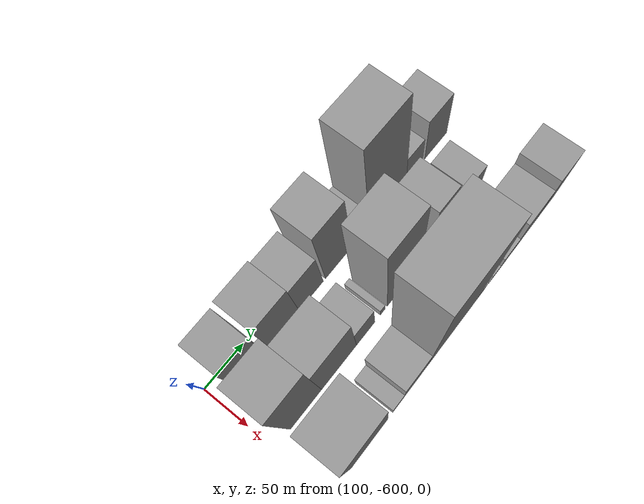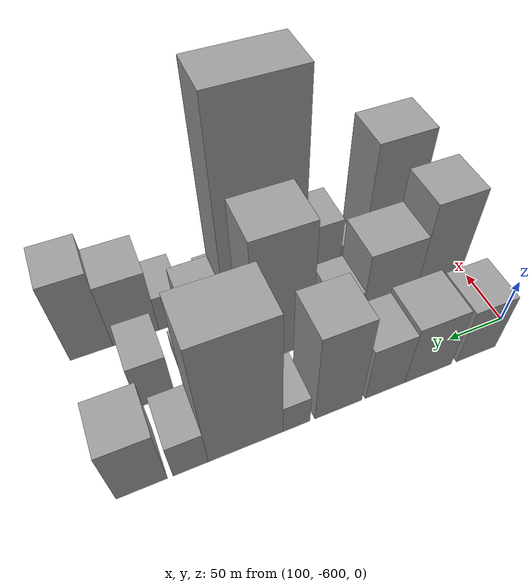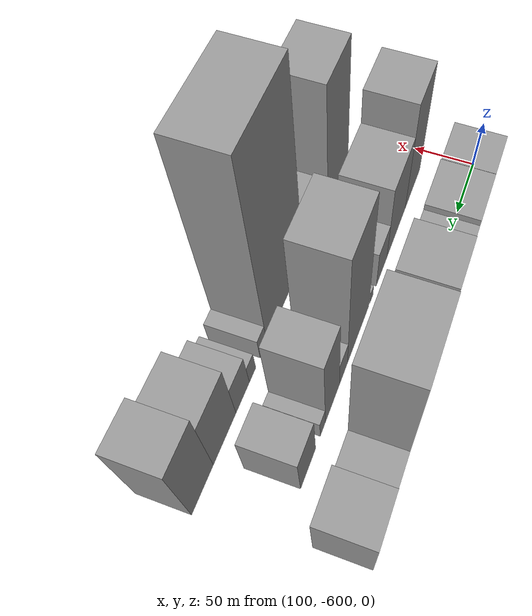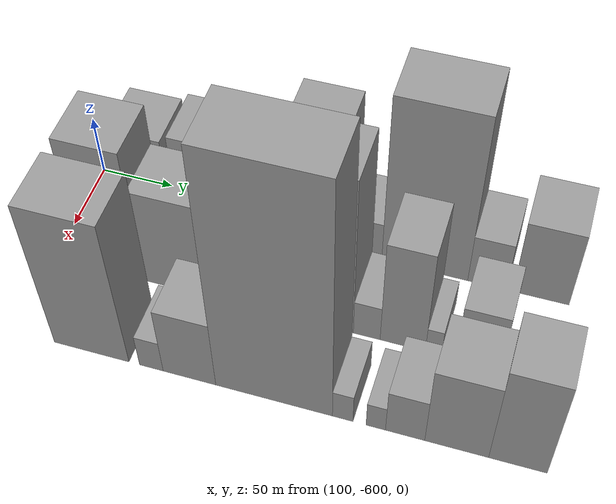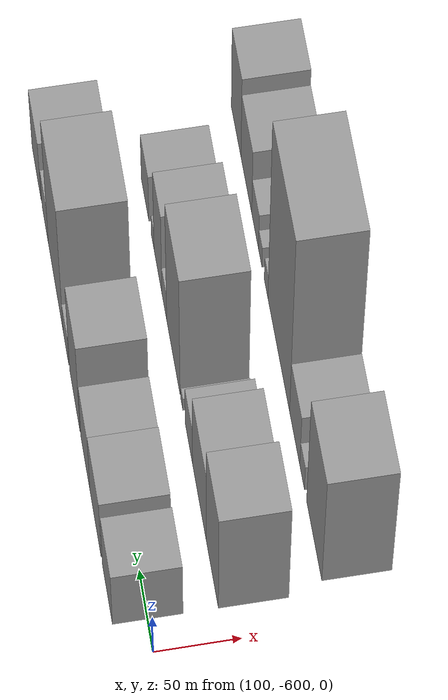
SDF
<sdf version="1.6">
 <world name="default">
  <model name="building_1">
   <static>1</static>
   <pose>100.0000 -561.8309 0 0.000000 0.000000 0.000000</pose>
   <link name="link">
    <pose>0 0 33.00 0 0 0</pose>
    <collision name="collision"><geometry><box><size>40.0000 36.3382 66.0000</size></box></geometry></collision>
    <visual name="visual">
     <cast_shadows>0</cast_shadows>
     <geometry><box><size>40.0000 36.3382 66.0000</size></box></geometry>
     <material>
      <script>
       <uri>model://grey_wall/materials/scripts</uri>
       <uri>model://grey_wall/materials/textures</uri>
       <name>vrc/grey_wall</name>
      </script>
     </material>
    </visual>
   </link>
  </model>
  <model name="building_2">
   <static>1</static>
   <pose>100.0000 -517.9481 0 0.000000 0.000000 0.000000</pose>
   <link name="link">
    <pose>0 0 36.00 0 0 0</pose>
    <collision name="collision"><geometry><box><size>40.0000 41.4275 72.0000</size></box></geometry></collision>
    <visual name="visual">
     <cast_shadows>0</cast_shadows>
     <geometry><box><size>40.0000 41.4275 72.0000</size></box></geometry>
     <material>
      <script>
       <uri>model://grey_wall/materials/scripts</uri>
       <uri>model://grey_wall/materials/textures</uri>
       <name>vrc/grey_wall</name>
      </script>
     </material>
    </visual>
   </link>
  </model>
  <model name="building_3">
   <static>1</static>
   <pose>100.0000 -480.1152 0 0.000000 0.000000 0.000000</pose>
   <link name="link">
    <pose>0 0 33.00 0 0 0</pose>
    <collision name="collision"><geometry><box><size>40.0000 34.2383 66.0000</size></box></geometry></collision>
    <visual name="visual">
     <cast_shadows>0</cast_shadows>
     <geometry><box><size>40.0000 34.2383 66.0000</size></box></geometry>
     <material>
      <script>
       <uri>model://grey_wall/materials/scripts</uri>
       <uri>model://grey_wall/materials/textures</uri>
       <name>vrc/grey_wall</name>
      </script>
     </material>
    </visual>
   </link>
  </model>
  <model name="building_4">
   <static>1</static>
   <pose>100.0000 -440.6088 0 0.000000 0.000000 0.000000</pose>
   <link name="link">
    <pose>0 0 54.00 0 0 0</pose>
    <collision name="collision"><geometry><box><size>40.0000 38.7744 108.0000</size></box></geometry></collision>
    <visual name="visual">
     <cast_shadows>0</cast_shadows>
     <geometry><box><size>40.0000 38.7744 108.0000</size></box></geometry>
     <material>
      <script>
       <uri>model://grey_wall/materials/scripts</uri>
       <uri>model://grey_wall/materials/textures</uri>
       <name>vrc/grey_wall</name>
      </script>
     </material>
    </visual>
   </link>
  </model>
  <model name="building_5">
   <static>1</static>
   <pose>100.0000 -406.5077 0 0.000000 0.000000 0.000000</pose>
   <link name="link">
    <pose>0 0 18.00 0 0 0</pose>
    <collision name="collision"><geometry><box><size>40.0000 21.4278 36.0000</size></box></geometry></collision>
    <visual name="visual">
     <cast_shadows>0</cast_shadows>
     <geometry><box><size>40.0000 21.4278 36.0000</size></box></geometry>
     <material>
      <script>
       <uri>model://grey_wall/materials/scripts</uri>
       <uri>model://grey_wall/materials/textures</uri>
       <name>vrc/grey_wall</name>
      </script>
     </material>
    </visual>
   </link>
  </model>
  <model name="building_6">
   <static>1</static>
   <pose>100.0000 -367.1840 0 0.000000 0.000000 0.000000</pose>
   <link name="link">
    <pose>0 0 75.00 0 0 0</pose>
    <collision name="collision"><geometry><box><size>40.0000 57.2195 150.0000</size></box></geometry></collision>
    <visual name="visual">
     <cast_shadows>0</cast_shadows>
     <geometry><box><size>40.0000 57.2195 150.0000</size></box></geometry>
     <material>
      <script>
       <uri>model://grey_wall/materials/scripts</uri>
       <uri>model://grey_wall/materials/textures</uri>
       <name>vrc/grey_wall</name>
      </script>
     </material>
    </visual>
   </link>
  </model>
  <model name="building_7">
   <static>1</static>
   <pose>100.0000 -325.8104 0 0.000000 0.000000 0.000000</pose>
   <link name="link">
    <pose>0 0 22.50 0 0 0</pose>
    <collision name="collision"><geometry><box><size>40.0000 25.5277 45.0000</size></box></geometry></collision>
    <visual name="visual">
     <cast_shadows>0</cast_shadows>
     <geometry><box><size>40.0000 25.5277 45.0000</size></box></geometry>
     <material>
      <script>
       <uri>model://grey_wall/materials/scripts</uri>
       <uri>model://grey_wall/materials/textures</uri>
       <name>vrc/grey_wall</name>
      </script>
     </material>
    </visual>
   </link>
  </model>
  <model name="building_8">
   <static>1</static>
   <pose>100.0000 -291.0160 0 0.000000 0.000000 0.000000</pose>
   <link name="link">
    <pose>0 0 34.50 0 0 0</pose>
    <collision name="collision"><geometry><box><size>40.0000 36.0610 69.0000</size></box></geometry></collision>
    <visual name="visual">
     <cast_shadows>0</cast_shadows>
     <geometry><box><size>40.0000 36.0610 69.0000</size></box></geometry>
     <material>
      <script>
       <uri>model://grey_wall/materials/scripts</uri>
       <uri>model://grey_wall/materials/textures</uri>
       <name>vrc/grey_wall</name>
      </script>
     </material>
    </visual>
   </link>
  </model>
  <model name="building_38">
   <static>1</static>
   <pose>160.0000 -559.2099 0 0.000000 0.000000 0.000000</pose>
   <link name="link">
    <pose>0 0 60.00 0 0 0</pose>
    <collision name="collision"><geometry><box><size>40.0000 41.5803 120.0000</size></box></geometry></collision>
    <visual name="visual">
     <cast_shadows>0</cast_shadows>
     <geometry><box><size>40.0000 41.5803 120.0000</size></box></geometry>
     <material>
      <script>
       <uri>model://grey_wall/materials/scripts</uri>
       <uri>model://grey_wall/materials/textures</uri>
       <name>vrc/grey_wall</name>
      </script>
     </material>
    </visual>
   </link>
  </model>
  <model name="building_39">
   <static>1</static>
   <pose>160.0000 -514.3681 0 0.000000 0.000000 0.000000</pose>
   <link name="link">
    <pose>0 0 43.50 0 0 0</pose>
    <collision name="collision"><geometry><box><size>40.0000 48.1032 87.0000</size></box></geometry></collision>
    <visual name="visual">
     <cast_shadows>0</cast_shadows>
     <geometry><box><size>40.0000 48.1032 87.0000</size></box></geometry>
     <material>
      <script>
       <uri>model://grey_wall/materials/scripts</uri>
       <uri>model://grey_wall/materials/textures</uri>
       <name>vrc/grey_wall</name>
      </script>
     </material>
    </visual>
   </link>
  </model>
  <model name="building_40">
   <static>1</static>
   <pose>160.0000 -477.2326 0 0.000000 0.000000 0.000000</pose>
   <link name="link">
    <pose>0 0 22.50 0 0 0</pose>
    <collision name="collision"><geometry><box><size>40.0000 26.1678 45.0000</size></box></geometry></collision>
    <visual name="visual">
     <cast_shadows>0</cast_shadows>
     <geometry><box><size>40.0000 26.1678 45.0000</size></box></geometry>
     <material>
      <script>
       <uri>model://grey_wall/materials/scripts</uri>
       <uri>model://grey_wall/materials/textures</uri>
       <name>vrc/grey_wall</name>
      </script>
     </material>
    </visual>
   </link>
  </model>
  <model name="building_41">
   <static>1</static>
   <pose>160.0000 -452.6797 0 0.000000 0.000000 0.000000</pose>
   <link name="link">
    <pose>0 0 7.50 0 0 0</pose>
    <collision name="collision"><geometry><box><size>40.0000 6.9381 15.0000</size></box></geometry></collision>
    <visual name="visual">
     <cast_shadows>0</cast_shadows>
     <geometry><box><size>40.0000 6.9381 15.0000</size></box></geometry>
     <material>
      <script>
       <uri>model://grey_wall/materials/scripts</uri>
       <uri>model://grey_wall/materials/textures</uri>
       <name>vrc/grey_wall</name>
      </script>
     </material>
    </visual>
   </link>
  </model>
  <model name="building_42">
   <static>1</static>
   <pose>160.0000 -422.0795 0 0.000000 0.000000 0.000000</pose>
   <link name="link">
    <pose>0 0 72.00 0 0 0</pose>
    <collision name="collision"><geometry><box><size>40.0000 48.2623 144.0000</size></box></geometry></collision>
    <visual name="visual">
     <cast_shadows>0</cast_shadows>
     <geometry><box><size>40.0000 48.2623 144.0000</size></box></geometry>
     <material>
      <script>
       <uri>model://grey_wall/materials/scripts</uri>
       <uri>model://grey_wall/materials/textures</uri>
       <name>vrc/grey_wall</name>
      </script>
     </material>
    </visual>
   </link>
  </model>
  <model name="building_43">
   <static>1</static>
   <pose>160.0000 -389.3384 0 0.000000 0.000000 0.000000</pose>
   <link name="link">
    <pose>0 0 16.50 0 0 0</pose>
    <collision name="collision"><geometry><box><size>40.0000 17.2200 33.0000</size></box></geometry></collision>
    <visual name="visual">
     <cast_shadows>0</cast_shadows>
     <geometry><box><size>40.0000 17.2200 33.0000</size></box></geometry>
     <material>
      <script>
       <uri>model://grey_wall/materials/scripts</uri>
       <uri>model://grey_wall/materials/textures</uri>
       <name>vrc/grey_wall</name>
      </script>
     </material>
    </visual>
   </link>
  </model>
  <model name="building_44">
   <static>1</static>
   <pose>160.0000 -366.3206 0 0.000000 0.000000 0.000000</pose>
   <link name="link">
    <pose>0 0 48.00 0 0 0</pose>
    <collision name="collision"><geometry><box><size>40.0000 28.8156 96.0000</size></box></geometry></collision>
    <visual name="visual">
     <cast_shadows>0</cast_shadows>
     <geometry><box><size>40.0000 28.8156 96.0000</size></box></geometry>
     <material>
      <script>
       <uri>model://grey_wall/materials/scripts</uri>
       <uri>model://grey_wall/materials/textures</uri>
       <name>vrc/grey_wall</name>
      </script>
     </material>
    </visual>
   </link>
  </model>
  <model name="building_45">
   <static>1</static>
   <pose>160.0000 -346.7898 0 0.000000 0.000000 0.000000</pose>
   <link name="link">
    <pose>0 0 12.00 0 0 0</pose>
    <collision name="collision"><geometry><box><size>40.0000 10.2461 24.0000</size></box></geometry></collision>
    <visual name="visual">
     <cast_shadows>0</cast_shadows>
     <geometry><box><size>40.0000 10.2461 24.0000</size></box></geometry>
     <material>
      <script>
       <uri>model://grey_wall/materials/scripts</uri>
       <uri>model://grey_wall/materials/textures</uri>
       <name>vrc/grey_wall</name>
      </script>
     </material>
    </visual>
   </link>
  </model>
  <model name="building_46">
   <static>1</static>
   <pose>160.0000 -318.5452 0 0.000000 0.000000 0.000000</pose>
   <link name="link">
    <pose>0 0 27.00 0 0 0</pose>
    <collision name="collision"><geometry><box><size>40.0000 28.2431 54.0000</size></box></geometry></collision>
    <visual name="visual">
     <cast_shadows>0</cast_shadows>
     <geometry><box><size>40.0000 28.2431 54.0000</size></box></geometry>
     <material>
      <script>
       <uri>model://grey_wall/materials/scripts</uri>
       <uri>model://grey_wall/materials/textures</uri>
       <name>vrc/grey_wall</name>
      </script>
     </material>
    </visual>
   </link>
  </model>
  <model name="building_73">
   <static>1</static>
   <pose>220.0000 -548.1871 0 0.000000 0.000000 0.000000</pose>
   <link name="link">
    <pose>0 0 66.00 0 0 0</pose>
    <collision name="collision"><geometry><box><size>40.0000 49.6259 132.0000</size></box></geometry></collision>
    <visual name="visual">
     <cast_shadows>0</cast_shadows>
     <geometry><box><size>40.0000 49.6259 132.0000</size></box></geometry>
     <material>
      <script>
       <uri>model://grey_wall/materials/scripts</uri>
       <uri>model://grey_wall/materials/textures</uri>
       <name>vrc/grey_wall</name>
      </script>
     </material>
    </visual>
   </link>
  </model>
  <model name="building_74">
   <static>1</static>
   <pose>220.0000 -508.6748 0 0.000000 0.000000 0.000000</pose>
   <link name="link">
    <pose>0 0 15.00 0 0 0</pose>
    <collision name="collision"><geometry><box><size>40.0000 15.3985 30.0000</size></box></geometry></collision>
    <visual name="visual">
     <cast_shadows>0</cast_shadows>
     <geometry><box><size>40.0000 15.3985 30.0000</size></box></geometry>
     <material>
      <script>
       <uri>model://grey_wall/materials/scripts</uri>
       <uri>model://grey_wall/materials/textures</uri>
       <name>vrc/grey_wall</name>
      </script>
     </material>
    </visual>
   </link>
  </model>
  <model name="building_75">
   <static>1</static>
   <pose>220.0000 -483.9895 0 0.000000 0.000000 0.000000</pose>
   <link name="link">
    <pose>0 0 31.50 0 0 0</pose>
    <collision name="collision"><geometry><box><size>40.0000 33.9722 63.0000</size></box></geometry></collision>
    <visual name="visual">
     <cast_shadows>0</cast_shadows>
     <geometry><box><size>40.0000 33.9722 63.0000</size></box></geometry>
     <material>
      <script>
       <uri>model://grey_wall/materials/scripts</uri>
       <uri>model://grey_wall/materials/textures</uri>
       <name>vrc/grey_wall</name>
      </script>
     </material>
    </visual>
   </link>
  </model>
  <model name="building_76">
   <static>1</static>
   <pose>220.0000 -430.3604 0 0.000000 0.000000 0.000000</pose>
   <link name="link">
    <pose>0 0 106.50 0 0 0</pose>
    <collision name="collision"><geometry><box><size>40.0000 73.2858 213.0000</size></box></geometry></collision>
    <visual name="visual">
     <cast_shadows>0</cast_shadows>
     <geometry><box><size>40.0000 73.2858 213.0000</size></box></geometry>
     <material>
      <script>
       <uri>model://grey_wall/materials/scripts</uri>
       <uri>model://grey_wall/materials/textures</uri>
       <name>vrc/grey_wall</name>
      </script>
     </material>
    </visual>
   </link>
  </model>
  <model name="building_77">
   <static>1</static>
   <pose>220.0000 -387.3853 0 0.000000 0.000000 0.000000</pose>
   <link name="link">
    <pose>0 0 13.50 0 0 0</pose>
    <collision name="collision"><geometry><box><size>40.0000 12.6644 27.0000</size></box></geometry></collision>
    <visual name="visual">
     <cast_shadows>0</cast_shadows>
     <geometry><box><size>40.0000 12.6644 27.0000</size></box></geometry>
     <material>
      <script>
       <uri>model://grey_wall/materials/scripts</uri>
       <uri>model://grey_wall/materials/textures</uri>
       <name>vrc/grey_wall</name>
      </script>
     </material>
    </visual>
   </link>
  </model>
  <model name="building_78">
   <static>1</static>
   <pose>220.0000 -367.1645 0 0.000000 0.000000 0.000000</pose>
   <link name="link">
    <pose>0 0 12.00 0 0 0</pose>
    <collision name="collision"><geometry><box><size>40.0000 11.7772 24.0000</size></box></geometry></collision>
    <visual name="visual">
     <cast_shadows>0</cast_shadows>
     <geometry><box><size>40.0000 11.7772 24.0000</size></box></geometry>
     <material>
      <script>
       <uri>model://grey_wall/materials/scripts</uri>
       <uri>model://grey_wall/materials/textures</uri>
       <name>vrc/grey_wall</name>
      </script>
     </material>
    </visual>
   </link>
  </model>
  <model name="building_79">
   <static>1</static>
   <pose>220.0000 -349.4355 0 0.000000 0.000000 0.000000</pose>
   <link name="link">
    <pose>0 0 21.00 0 0 0</pose>
    <collision name="collision"><geometry><box><size>40.0000 23.6808 42.0000</size></box></geometry></collision>
    <visual name="visual">
     <cast_shadows>0</cast_shadows>
     <geometry><box><size>40.0000 23.6808 42.0000</size></box></geometry>
     <material>
      <script>
       <uri>model://grey_wall/materials/scripts</uri>
       <uri>model://grey_wall/materials/textures</uri>
       <name>vrc/grey_wall</name>
      </script>
     </material>
    </visual>
   </link>
  </model>
  <model name="building_80">
   <static>1</static>
   <pose>220.0000 -318.6279 0 0.000000 0.000000 0.000000</pose>
   <link name="link">
    <pose>0 0 37.50 0 0 0</pose>
    <collision name="collision"><geometry><box><size>40.0000 37.9344 75.0000</size></box></geometry></collision>
    <visual name="visual">
     <cast_shadows>0</cast_shadows>
     <geometry><box><size>40.0000 37.9344 75.0000</size></box></geometry>
     <material>
      <script>
       <uri>model://grey_wall/materials/scripts</uri>
       <uri>model://grey_wall/materials/textures</uri>
       <name>vrc/grey_wall</name>
      </script>
     </material>
    </visual>
   </link>
  </model>
  <model name="building_81">
   <static>1</static>
   <pose>220.0000 -282.5790 0 0.000000 0.000000 0.000000</pose>
   <link name="link">
    <pose>0 0 46.50 0 0 0</pose>
    <collision name="collision"><geometry><box><size>40.0000 34.1635 93.0000</size></box></geometry></collision>
    <visual name="visual">
     <cast_shadows>0</cast_shadows>
     <geometry><box><size>40.0000 34.1635 93.0000</size></box></geometry>
     <material>
      <script>
       <uri>model://grey_wall/materials/scripts</uri>
       <uri>model://grey_wall/materials/textures</uri>
       <name>vrc/grey_wall</name>
      </script>
     </material>
    </visual>
   </link>
  </model>
 </world>
</sdf>
